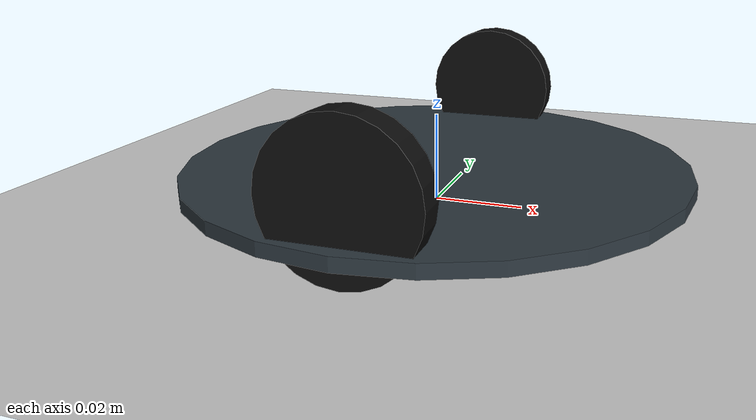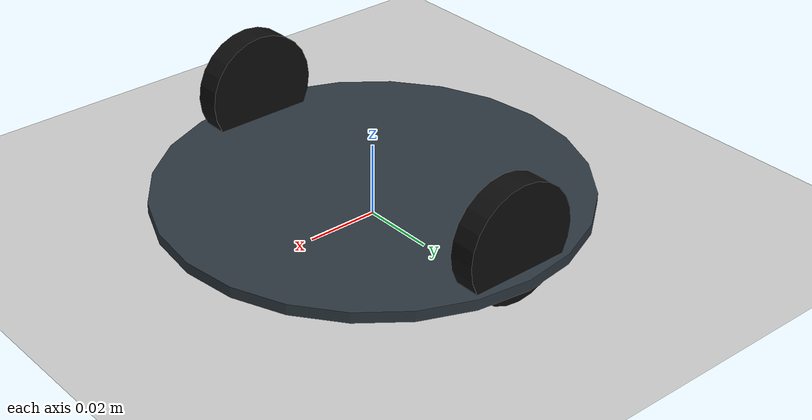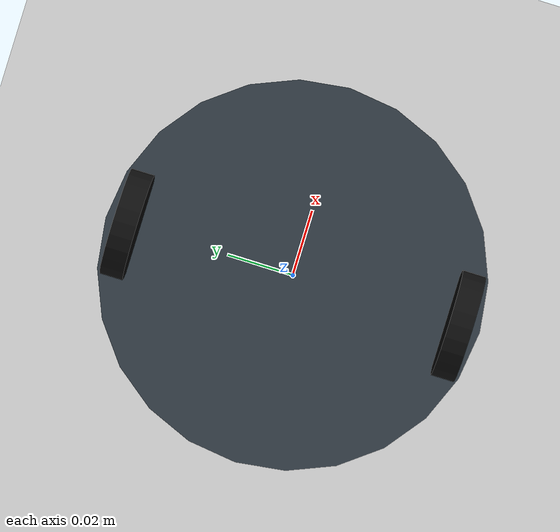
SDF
<?xml version="1.0" ?>
<sdf version="1.10">
    <world name="car_world">
        <physics name="1ms" type="ignored">
            <max_step_size>0.001</max_step_size>
            <real_time_factor>1.0</real_time_factor>
        </physics>
        <plugin
            filename="gz-sim-physics-system"
            name="gz::sim::systems::Physics">
        </plugin>
        <plugin
            filename="gz-sim-user-commands-system"
            name="gz::sim::systems::UserCommands">
        </plugin>
        <plugin
            filename="gz-sim-scene-broadcaster-system"
            name="gz::sim::systems::SceneBroadcaster">
        </plugin>

        <light type="directional" name="sun">
            <cast_shadows>true</cast_shadows>
            <pose>0 0 10 0 0 0</pose>
            <diffuse>0.8 0.8 0.8 1</diffuse>
            <specular>0.2 0.2 0.2 1</specular>
            <attenuation>
                <range>1000</range>
                <constant>0.9</constant>
                <linear>0.01</linear>
                <quadratic>0.001</quadratic>
            </attenuation>
            <direction>-0.5 0.1 -0.9</direction>
        </light>

        <model name="ground_plane">
            <static>true</static>
            <link name="link">
                <collision name="collision">
                <geometry>
                    <plane>
                    <normal>0 0 1</normal>
                    </plane>
                </geometry>
                </collision>
                <visual name="visual">
                <geometry>
                    <plane>
                    <normal>0 0 1</normal>
                    <size>100 100</size>
                    </plane>
                </geometry>
                <material>
                    <ambient>0.8 0.8 0.8 1</ambient>
                    <diffuse>0.8 0.8 0.8 1</diffuse>
                    <specular>0.8 0.8 0.8 1</specular>
                </material>
                </visual>
            </link>
        </model>
        <model name="kabot" canonical_link="base_link">
            <pose>0 0 0.017 0 0 0</pose>

            <link name="base_link">
                <must_be_base_link>true</must_be_base_link>
                <inertial>
                    <pose>0 0 -0.0095 0 0 0</pose>
                    <mass>0.24</mass>
                    <inertia>
                        <ixx>0.000198</ixx>
                        <ixy>0</ixy>
                        <ixz>0</ixz>
                        <iyy>0.000198</iyy>
                        <iyz>0</iyz>
                        <izz>0.000396</izz>
                    </inertia>
                </inertial>
                <collision name="base_collision">
                    <pose>0 0 -0.0095 0 0 0</pose>
                    <geometry>
                        <cylinder>
                            <radius>0.0575</radius>
                            <length>0.003</length>
                        </cylinder>
                    </geometry>
                    <surface>
                        <friction>
                            <ode>
                                <mu>0.6</mu>
                                <mu2>0.6</mu2>
                            </ode>
                        </friction>
                    </surface>
                </collision>
                <visual name="base_visual">
                    <pose>0 0 -0.0095 0 0 0</pose>
                    <geometry>
                        <cylinder>
                            <radius>0.0575</radius>
                            <length>0.003</length>
                        </cylinder>
                    </geometry>
                    <material>
                        <ambient>0.12 0.14 0.16 1</ambient>
                        <diffuse>0.18 0.22 0.25 1</diffuse>
                    </material>
                </visual>
            </link>

            <joint name="left_wheel_joint" type="revolute">
                <parent>base_link</parent>
                <child>left_wheel</child>
                <pose relative_to="base_link">0 0.0505 0 0 0 0</pose>
                <axis>
                    <xyz>0 1 0</xyz>
                    <limit>
                        <lower>-1.0e16</lower>
                        <upper>1.0e16</upper>
                        <effort>0.05</effort>
                        <velocity>4.39823</velocity>
                    </limit>
                    <dynamics>
                        <damping>0.001</damping>
                        <friction>0.001</friction>
                    </dynamics>
                </axis>
            </joint>

            <link name="left_wheel">
                <pose relative_to="left_wheel_joint"/>
                <inertial>
                    <mass>0.015</mass>
                    <inertia>
                        <ixx>0.00000134</ixx>
                        <ixy>0</ixy>
                        <ixz>0</ixz>
                        <iyy>0.00000192</iyy>
                        <iyz>0</iyz>
                        <izz>0.00000134</izz>
                    </inertia>
                </inertial>
                <collision name="left_wheel_collision">
                    <pose>0 0 0 1.570796 0 0</pose>
                    <geometry>
                        <cylinder>
                            <radius>0.016</radius>
                            <length>0.007</length>
                        </cylinder>
                    </geometry>
                    <surface>
                        <friction>
                            <ode>
                                <mu>0.9</mu>
                                <mu2>0.9</mu2>
                            </ode>
                        </friction>
                    </surface>
                </collision>
                <visual name="left_wheel_visual">
                    <pose>0 0 0 1.570796 0 0</pose>
                    <geometry>
                        <cylinder>
                            <radius>0.016</radius>
                            <length>0.007</length>
                        </cylinder>
                    </geometry>
                    <material>
                        <ambient>0.03 0.03 0.03 1</ambient>
                        <diffuse>0.05 0.05 0.05 1</diffuse>
                    </material>
                </visual>
            </link>

            <joint name="right_wheel_joint" type="revolute">
                <parent>base_link</parent>
                <child>right_wheel</child>
                <pose relative_to="base_link">0 -0.0505 0 0 0 0</pose>
                <axis>
                    <xyz>0 1 0</xyz>
                    <limit>
                        <lower>-1.0e16</lower>
                        <upper>1.0e16</upper>
                        <effort>0.05</effort>
                        <velocity>4.39823</velocity>
                    </limit>
                    <dynamics>
                        <damping>0.001</damping>
                        <friction>0.001</friction>
                    </dynamics>
                </axis>
            </joint>

            <link name="right_wheel">
                <pose relative_to="right_wheel_joint"/>
                <inertial>
                    <mass>0.015</mass>
                    <inertia>
                        <ixx>0.00000134</ixx>
                        <ixy>0</ixy>
                        <ixz>0</ixz>
                        <iyy>0.00000192</iyy>
                        <iyz>0</iyz>
                        <izz>0.00000134</izz>
                    </inertia>
                </inertial>
                <collision name="right_wheel_collision">
                    <pose>0 0 0 1.570796 0 0</pose>
                    <geometry>
                        <cylinder>
                            <radius>0.016</radius>
                            <length>0.007</length>
                        </cylinder>
                    </geometry>
                    <surface>
                        <friction>
                            <ode>
                                <mu>0.9</mu>
                                <mu2>0.9</mu2>
                            </ode>
                        </friction>
                    </surface>
                </collision>
                <visual name="right_wheel_visual">
                    <pose>0 0 0 1.570796 0 0</pose>
                    <geometry>
                        <cylinder>
                            <radius>0.016</radius>
                            <length>0.007</length>
                        </cylinder>
                    </geometry>
                    <material>
                        <ambient>0.03 0.03 0.03 1</ambient>
                        <diffuse>0.05 0.05 0.05 1</diffuse>
                    </material>
                </visual>
            </link>

            <joint name="front_slider_joint" type="fixed">
                <parent>base_link</parent>
                <child>front_slider</child>
                <pose relative_to="base_link">0.040 0 -0.0145 0 0 0</pose>
            </joint>

            <joint name="rear_slider_joint" type="fixed">
                <parent>base_link</parent>
                <child>rear_slider</child>
                <pose relative_to="base_link">-0.040 0 -0.0145 0 0 0</pose>
            </joint>

            <link name="front_slider">
                <pose relative_to="front_slider_joint"/>
                <inertial><mass>0.0025</mass></inertial>
                <collision name="front_slider_collision">
                    <geometry><cylinder><radius>0.005</radius><length>0.001</length></cylinder></geometry>
                    <surface>
                        <friction><ode><mu>0.15</mu><mu2>0.15</mu2></ode></friction>
                    </surface>
                </collision>
                <visual name="front_slider_visual">
                    <geometry><cylinder><radius>0.005</radius><length>0.001</length></cylinder></geometry>
                    <material><ambient>0.25 0.25 0.25 1</ambient><diffuse>0.3 0.3 0.3 1</diffuse></material>
                </visual>
            </link>

            <link name="rear_slider">
                <pose relative_to="rear_slider_joint"/>
                <inertial><mass>0.0025</mass></inertial>
                <collision name="rear_slider_collision">
                    <geometry><cylinder><radius>0.005</radius><length>0.001</length></cylinder></geometry>
                    <surface>
                        <friction><ode><mu>0.15</mu><mu2>0.15</mu2></ode></friction>
                    </surface>
                </collision>
                <visual name="rear_slider_visual">
                    <geometry><cylinder><radius>0.005</radius><length>0.001</length></cylinder></geometry>
                    <material><ambient>0.25 0.25 0.25 1</ambient><diffuse>0.3 0.3 0.3 1</diffuse></material>
                </visual>
            </link>

        </model>
    </world>
</sdf>
